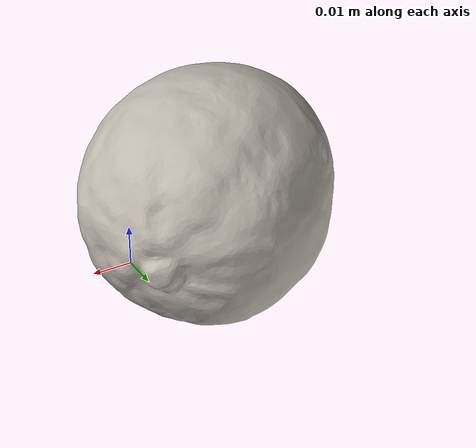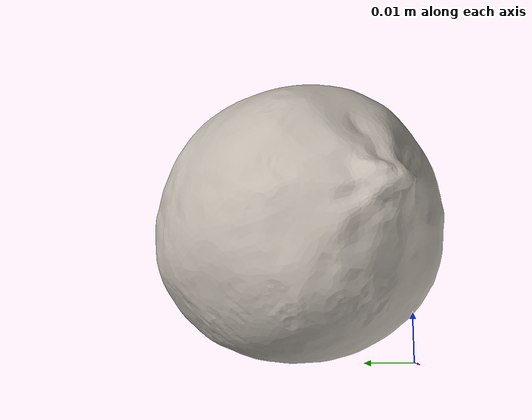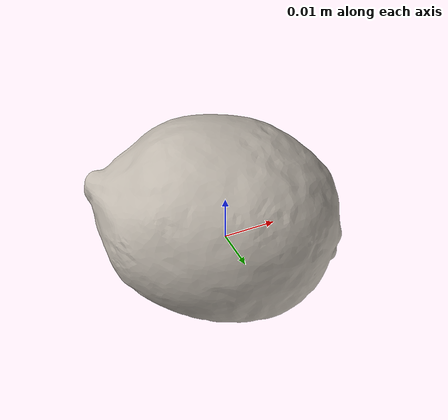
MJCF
<mujoco model="lemon">
  <compiler angle="radian" meshdir="assets" texturedir="assets"/>
    <default>
        <default class="ycb_col">
            <geom contype="1" conaffinity="1" group="3" rgba=".4 .5 .6 1"/>
        </default>
        <default class="ycb_viz">
            <geom contype="0" conaffinity="0" type="mesh" mass="0"/>
        </default>
    </default>

  <asset>
    <texture type="2d" name="lemon_tex" file="texture_map.png"/>
    <material name="lemon_mat" texture="lemon_tex" specular="0.5" shininess="0.5"/>
    <mesh file="textured.obj" name="lemon"/>
    <mesh file="textured_collision_0.obj" name="lemon_collision_0"/>
  </asset>
  <worldbody>
      <geom class="ycb_viz" material="lemon_mat" mesh="lemon"/>
      <geom class="ycb_col" mesh="lemon_collision_0" conaffinity="1" condim="4" friction="0.1 0.1 0.1" mass="0.05900000000000001" rgba="1 1 1 1" solimp="0.99 0.99 0.01" solref=".001 0.1" type="mesh" group="3"/>
  </worldbody>
</mujoco>
